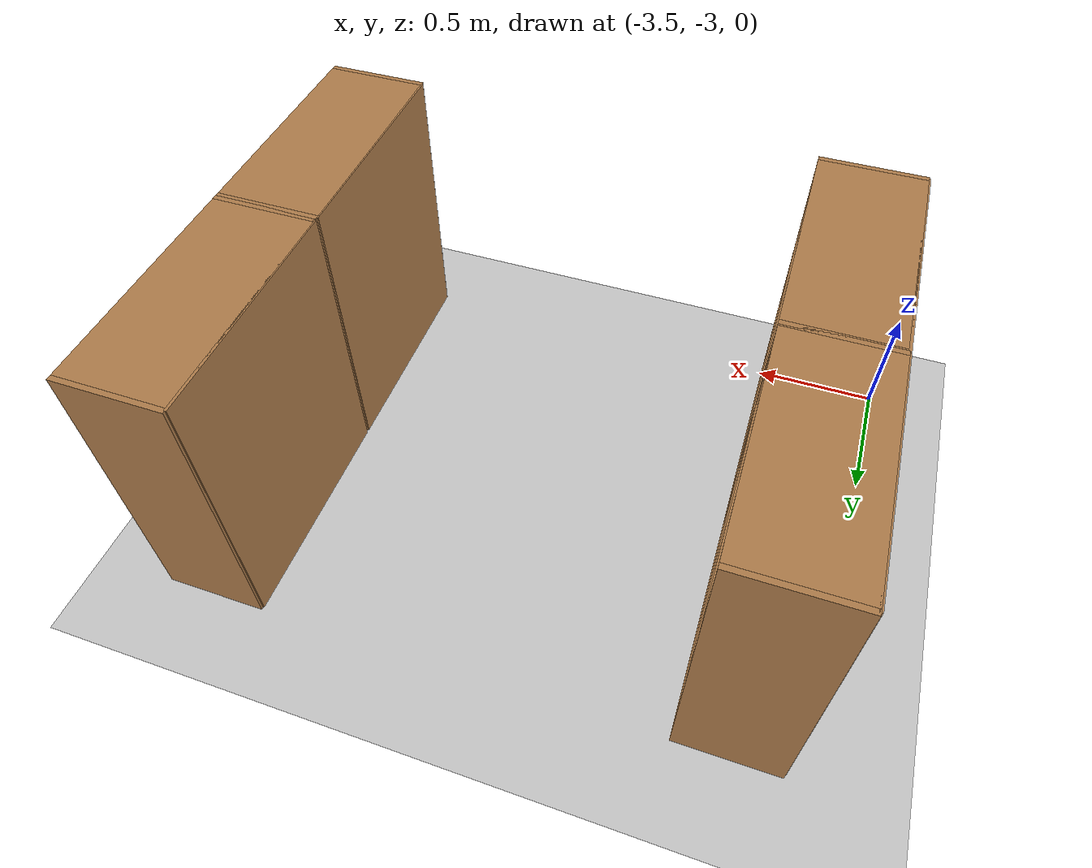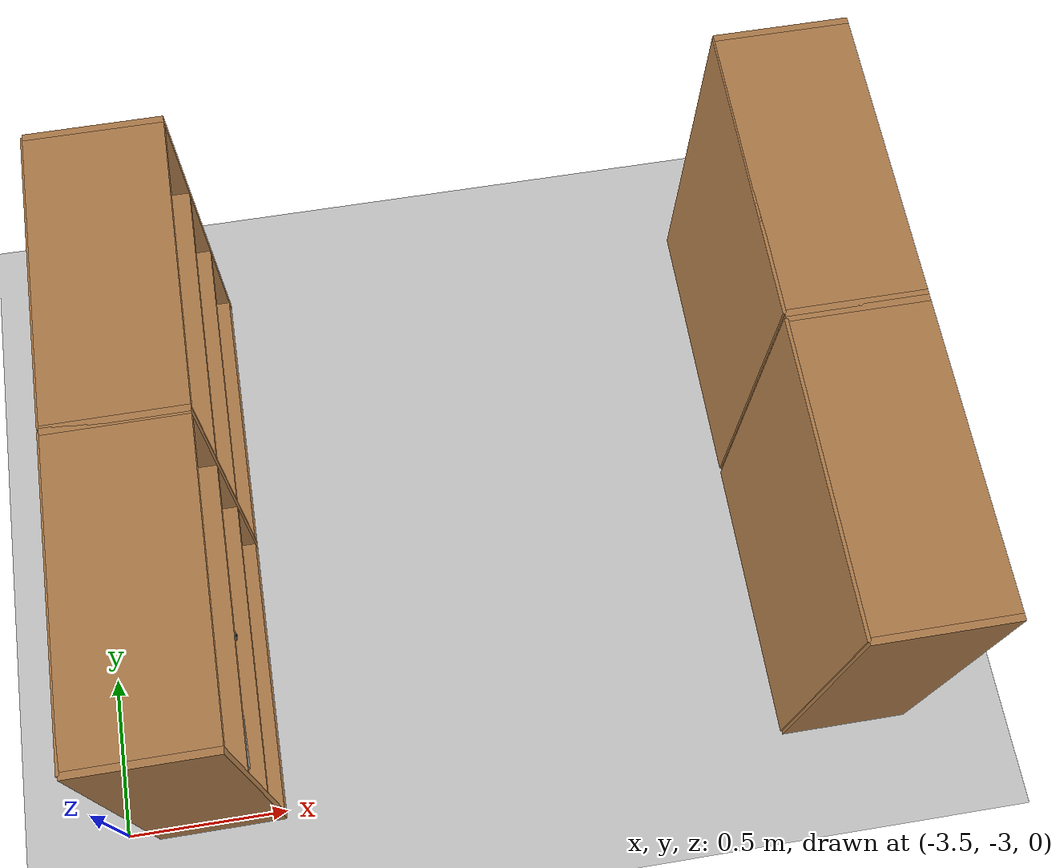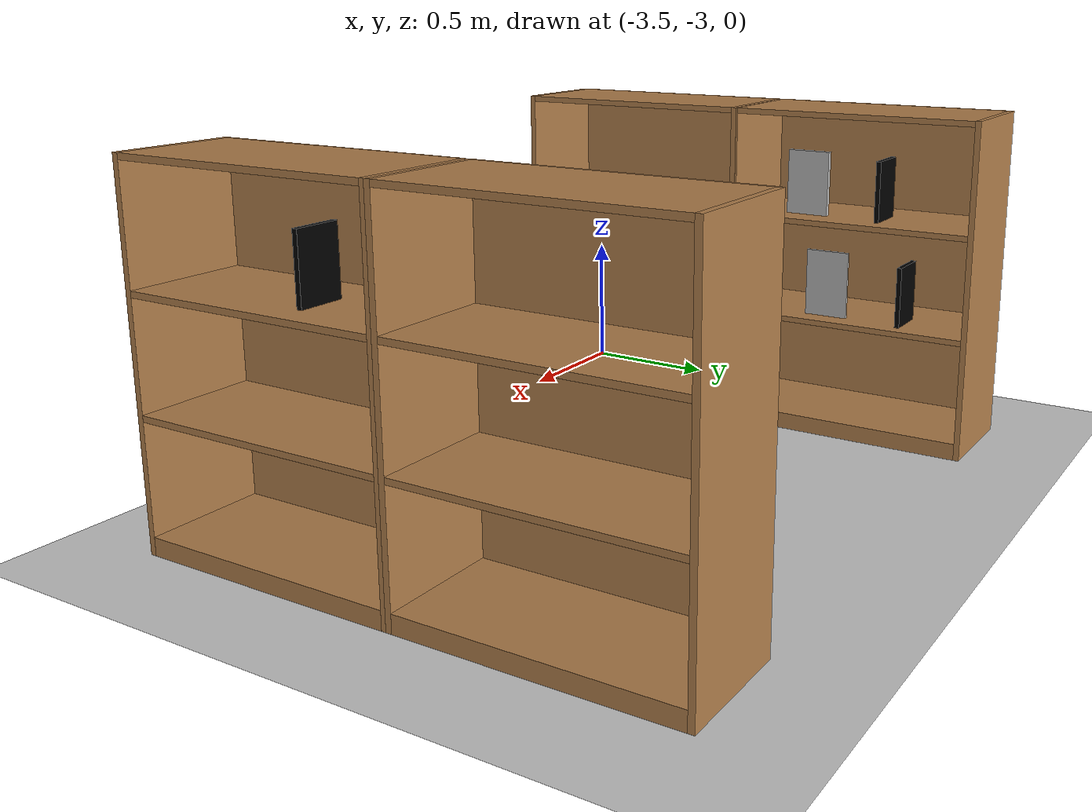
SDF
<sdf version="1.7">
 <world name="default">
  <model name="ground_plane">
   <static>1</static>
   <link name="link">
    <collision name="collision">
     <geometry><plane><normal>0 0 1</normal><size>100 100</size></plane></geometry>
     <surface><friction><ode><mu>100</mu><mu2>50</mu2></ode></friction></surface>
    </collision>
    <visual name="visual">
     <cast_shadows>0</cast_shadows>
     <geometry><plane><normal>0 0 1</normal><size>100 100</size></plane></geometry>
     <material>
      <script><uri>file://media/materials/scripts/gazebo.material</uri><name>Gazebo/Grey</name></script>
     </material>
    </visual>
   </link>
  </model>
  <model name="bookshelf">
   <static>1</static>
   <link name="link">
    <inertial><mass>1</mass></inertial>
    <collision name="back">
     <pose>0 0.005 0.6 0 -0 0</pose>
     <geometry><box><size>0.9 0.01 1.2</size></box></geometry>
    </collision>
    <visual name="visual1">
     <pose>0 0.005 0.6 0 -0 0</pose>
     <geometry><box><size>0.9 0.01 1.2</size></box></geometry>
     <material>
      <script><uri>file://media/materials/scripts/gazebo.material</uri><name>Gazebo/Wood</name></script>
     </material>
    </visual>
    <collision name="left_side">
     <pose>0.45 -0.195 0.6 0 -0 0</pose>
     <geometry><box><size>0.02 0.4 1.2</size></box></geometry>
    </collision>
    <visual name="visual2">
     <pose>0.45 -0.195 0.6 0 -0 0</pose>
     <geometry><box><size>0.02 0.4 1.2</size></box></geometry>
     <material>
      <script><uri>file://media/materials/scripts/gazebo.material</uri><name>Gazebo/Wood</name></script>
     </material>
    </visual>
    <collision name="right_side">
     <pose>-0.45 -0.195 0.6 0 -0 0</pose>
     <geometry><box><size>0.02 0.4 1.2</size></box></geometry>
    </collision>
    <visual name="visual3">
     <pose>-0.45 -0.195 0.6 0 -0 0</pose>
     <geometry><box><size>0.02 0.4 1.2</size></box></geometry>
     <material>
      <script><uri>file://media/materials/scripts/gazebo.material</uri><name>Gazebo/Wood</name></script>
     </material>
    </visual>
    <collision name="bottom">
     <pose>0 -0.195 0.03 0 -0 0</pose>
     <geometry><box><size>0.88 0.4 0.06</size></box></geometry>
    </collision>
    <visual name="visual4">
     <pose>0 -0.195 0.03 0 -0 0</pose>
     <geometry><box><size>0.88 0.4 0.06</size></box></geometry>
     <material>
      <script><uri>file://media/materials/scripts/gazebo.material</uri><name>Gazebo/Wood</name></script>
     </material>
    </visual>
    <collision name="top">
     <pose>0 -0.195 1.19 0 -0 0</pose>
     <geometry><box><size>0.88 0.4 0.02</size></box></geometry>
    </collision>
    <visual name="visual5">
     <pose>0 -0.195 1.19 0 -0 0</pose>
     <geometry><box><size>0.88 0.4 0.02</size></box></geometry>
     <material>
      <script><uri>file://media/materials/scripts/gazebo.material</uri><name>Gazebo/Wood</name></script>
     </material>
    </visual>
    <collision name="low_shelf">
     <pose>0 -0.195 0.43 0 -0 0</pose>
     <geometry><box><size>0.88 0.4 0.02</size></box></geometry>
    </collision>
    <visual name="visual6">
     <pose>0 -0.195 0.43 0 -0 0</pose>
     <geometry><box><size>0.88 0.4 0.02</size></box></geometry>
     <material>
      <script><uri>file://media/materials/scripts/gazebo.material</uri><name>Gazebo/Wood</name></script>
     </material>
    </visual>
    <collision name="high_shelf">
     <pose>0 -0.195 0.8 0 -0 0</pose>
     <geometry><box><size>0.88 0.4 0.02</size></box></geometry>
    </collision>
    <visual name="visual7">
     <pose>0 -0.195 0.8 0 -0 0</pose>
     <geometry><box><size>0.88 0.4 0.02</size></box></geometry>
     <material>
      <script><uri>file://media/materials/scripts/gazebo.material</uri><name>Gazebo/Wood</name></script>
     </material>
    </visual>
   </link>
   <pose>-3.39927 -2.56354 0 0 -0 1.57111</pose>
  </model>
  <model name="bookshelf_clone">
   <static>1</static>
   <link name="link">
    <inertial><mass>1</mass></inertial>
    <collision name="back">
     <pose>0 0.005 0.6 0 -0 0</pose>
     <geometry><box><size>0.9 0.01 1.2</size></box></geometry>
    </collision>
    <visual name="visual1">
     <pose>0 0.005 0.6 0 -0 0</pose>
     <geometry><box><size>0.9 0.01 1.2</size></box></geometry>
     <material>
      <script><uri>file://media/materials/scripts/gazebo.material</uri><name>Gazebo/Wood</name></script>
     </material>
    </visual>
    <collision name="left_side">
     <pose>0.45 -0.195 0.6 0 -0 0</pose>
     <geometry><box><size>0.02 0.4 1.2</size></box></geometry>
    </collision>
    <visual name="visual2">
     <pose>0.45 -0.195 0.6 0 -0 0</pose>
     <geometry><box><size>0.02 0.4 1.2</size></box></geometry>
     <material>
      <script><uri>file://media/materials/scripts/gazebo.material</uri><name>Gazebo/Wood</name></script>
     </material>
    </visual>
    <collision name="right_side">
     <pose>-0.45 -0.195 0.6 0 -0 0</pose>
     <geometry><box><size>0.02 0.4 1.2</size></box></geometry>
    </collision>
    <visual name="visual3">
     <pose>-0.45 -0.195 0.6 0 -0 0</pose>
     <geometry><box><size>0.02 0.4 1.2</size></box></geometry>
     <material>
      <script><uri>file://media/materials/scripts/gazebo.material</uri><name>Gazebo/Wood</name></script>
     </material>
    </visual>
    <collision name="bottom">
     <pose>0 -0.195 0.03 0 -0 0</pose>
     <geometry><box><size>0.88 0.4 0.06</size></box></geometry>
    </collision>
    <visual name="visual4">
     <pose>0 -0.195 0.03 0 -0 0</pose>
     <geometry><box><size>0.88 0.4 0.06</size></box></geometry>
     <material>
      <script><uri>file://media/materials/scripts/gazebo.material</uri><name>Gazebo/Wood</name></script>
     </material>
    </visual>
    <collision name="top">
     <pose>0 -0.195 1.19 0 -0 0</pose>
     <geometry><box><size>0.88 0.4 0.02</size></box></geometry>
    </collision>
    <visual name="visual5">
     <pose>0 -0.195 1.19 0 -0 0</pose>
     <geometry><box><size>0.88 0.4 0.02</size></box></geometry>
     <material>
      <script><uri>file://media/materials/scripts/gazebo.material</uri><name>Gazebo/Wood</name></script>
     </material>
    </visual>
    <collision name="low_shelf">
     <pose>0 -0.195 0.43 0 -0 0</pose>
     <geometry><box><size>0.88 0.4 0.02</size></box></geometry>
    </collision>
    <visual name="visual6">
     <pose>0 -0.195 0.43 0 -0 0</pose>
     <geometry><box><size>0.88 0.4 0.02</size></box></geometry>
     <material>
      <script><uri>file://media/materials/scripts/gazebo.material</uri><name>Gazebo/Wood</name></script>
     </material>
    </visual>
    <collision name="high_shelf">
     <pose>0 -0.195 0.8 0 -0 0</pose>
     <geometry><box><size>0.88 0.4 0.02</size></box></geometry>
    </collision>
    <visual name="visual7">
     <pose>0 -0.195 0.8 0 -0 0</pose>
     <geometry><box><size>0.88 0.4 0.02</size></box></geometry>
     <material>
      <script><uri>file://media/materials/scripts/gazebo.material</uri><name>Gazebo/Wood</name></script>
     </material>
    </visual>
   </link>
   <pose>-3.39982 -1.65685 0 0 -0 1.57111</pose>
  </model>
  <model name="bookshelf_clone_2">
   <static>1</static>
   <link name="link">
    <inertial><mass>1</mass></inertial>
    <collision name="back">
     <pose>0 0.005 0.6 0 -0 0</pose>
     <geometry><box><size>0.9 0.01 1.2</size></box></geometry>
    </collision>
    <visual name="visual1">
     <pose>0 0.005 0.6 0 -0 0</pose>
     <geometry><box><size>0.9 0.01 1.2</size></box></geometry>
     <material>
      <script><uri>file://media/materials/scripts/gazebo.material</uri><name>Gazebo/Wood</name></script>
     </material>
    </visual>
    <collision name="left_side">
     <pose>0.45 -0.195 0.6 0 -0 0</pose>
     <geometry><box><size>0.02 0.4 1.2</size></box></geometry>
    </collision>
    <visual name="visual2">
     <pose>0.45 -0.195 0.6 0 -0 0</pose>
     <geometry><box><size>0.02 0.4 1.2</size></box></geometry>
     <material>
      <script><uri>file://media/materials/scripts/gazebo.material</uri><name>Gazebo/Wood</name></script>
     </material>
    </visual>
    <collision name="right_side">
     <pose>-0.45 -0.195 0.6 0 -0 0</pose>
     <geometry><box><size>0.02 0.4 1.2</size></box></geometry>
    </collision>
    <visual name="visual3">
     <pose>-0.45 -0.195 0.6 0 -0 0</pose>
     <geometry><box><size>0.02 0.4 1.2</size></box></geometry>
     <material>
      <script><uri>file://media/materials/scripts/gazebo.material</uri><name>Gazebo/Wood</name></script>
     </material>
    </visual>
    <collision name="bottom">
     <pose>0 -0.195 0.03 0 -0 0</pose>
     <geometry><box><size>0.88 0.4 0.06</size></box></geometry>
    </collision>
    <visual name="visual4">
     <pose>0 -0.195 0.03 0 -0 0</pose>
     <geometry><box><size>0.88 0.4 0.06</size></box></geometry>
     <material>
      <script><uri>file://media/materials/scripts/gazebo.material</uri><name>Gazebo/Wood</name></script>
     </material>
    </visual>
    <collision name="top">
     <pose>0 -0.195 1.19 0 -0 0</pose>
     <geometry><box><size>0.88 0.4 0.02</size></box></geometry>
    </collision>
    <visual name="visual5">
     <pose>0 -0.195 1.19 0 -0 0</pose>
     <geometry><box><size>0.88 0.4 0.02</size></box></geometry>
     <material>
      <script><uri>file://media/materials/scripts/gazebo.material</uri><name>Gazebo/Wood</name></script>
     </material>
    </visual>
    <collision name="low_shelf">
     <pose>0 -0.195 0.43 0 -0 0</pose>
     <geometry><box><size>0.88 0.4 0.02</size></box></geometry>
    </collision>
    <visual name="visual6">
     <pose>0 -0.195 0.43 0 -0 0</pose>
     <geometry><box><size>0.88 0.4 0.02</size></box></geometry>
     <material>
      <script><uri>file://media/materials/scripts/gazebo.material</uri><name>Gazebo/Wood</name></script>
     </material>
    </visual>
    <collision name="high_shelf">
     <pose>0 -0.195 0.8 0 -0 0</pose>
     <geometry><box><size>0.88 0.4 0.02</size></box></geometry>
    </collision>
    <visual name="visual7">
     <pose>0 -0.195 0.8 0 -0 0</pose>
     <geometry><box><size>0.88 0.4 0.02</size></box></geometry>
     <material>
      <script><uri>file://media/materials/scripts/gazebo.material</uri><name>Gazebo/Wood</name></script>
     </material>
    </visual>
   </link>
   <pose>-1.39561 -2.55264 0 0 -0 1.57111</pose>
  </model>
  <model name="bookshelf_clone_3">
   <static>1</static>
   <link name="link">
    <inertial><mass>1</mass></inertial>
    <collision name="back">
     <pose>0 0.005 0.6 0 -0 0</pose>
     <geometry><box><size>0.9 0.01 1.2</size></box></geometry>
    </collision>
    <visual name="visual1">
     <pose>0 0.005 0.6 0 -0 0</pose>
     <geometry><box><size>0.9 0.01 1.2</size></box></geometry>
     <material>
      <script><uri>file://media/materials/scripts/gazebo.material</uri><name>Gazebo/Wood</name></script>
     </material>
    </visual>
    <collision name="left_side">
     <pose>0.45 -0.195 0.6 0 -0 0</pose>
     <geometry><box><size>0.02 0.4 1.2</size></box></geometry>
    </collision>
    <visual name="visual2">
     <pose>0.45 -0.195 0.6 0 -0 0</pose>
     <geometry><box><size>0.02 0.4 1.2</size></box></geometry>
     <material>
      <script><uri>file://media/materials/scripts/gazebo.material</uri><name>Gazebo/Wood</name></script>
     </material>
    </visual>
    <collision name="right_side">
     <pose>-0.45 -0.195 0.6 0 -0 0</pose>
     <geometry><box><size>0.02 0.4 1.2</size></box></geometry>
    </collision>
    <visual name="visual3">
     <pose>-0.45 -0.195 0.6 0 -0 0</pose>
     <geometry><box><size>0.02 0.4 1.2</size></box></geometry>
     <material>
      <script><uri>file://media/materials/scripts/gazebo.material</uri><name>Gazebo/Wood</name></script>
     </material>
    </visual>
    <collision name="bottom">
     <pose>0 -0.195 0.03 0 -0 0</pose>
     <geometry><box><size>0.88 0.4 0.06</size></box></geometry>
    </collision>
    <visual name="visual4">
     <pose>0 -0.195 0.03 0 -0 0</pose>
     <geometry><box><size>0.88 0.4 0.06</size></box></geometry>
     <material>
      <script><uri>file://media/materials/scripts/gazebo.material</uri><name>Gazebo/Wood</name></script>
     </material>
    </visual>
    <collision name="top">
     <pose>0 -0.195 1.19 0 -0 0</pose>
     <geometry><box><size>0.88 0.4 0.02</size></box></geometry>
    </collision>
    <visual name="visual5">
     <pose>0 -0.195 1.19 0 -0 0</pose>
     <geometry><box><size>0.88 0.4 0.02</size></box></geometry>
     <material>
      <script><uri>file://media/materials/scripts/gazebo.material</uri><name>Gazebo/Wood</name></script>
     </material>
    </visual>
    <collision name="low_shelf">
     <pose>0 -0.195 0.43 0 -0 0</pose>
     <geometry><box><size>0.88 0.4 0.02</size></box></geometry>
    </collision>
    <visual name="visual6">
     <pose>0 -0.195 0.43 0 -0 0</pose>
     <geometry><box><size>0.88 0.4 0.02</size></box></geometry>
     <material>
      <script><uri>file://media/materials/scripts/gazebo.material</uri><name>Gazebo/Wood</name></script>
     </material>
    </visual>
    <collision name="high_shelf">
     <pose>0 -0.195 0.8 0 -0 0</pose>
     <geometry><box><size>0.88 0.4 0.02</size></box></geometry>
    </collision>
    <visual name="visual7">
     <pose>0 -0.195 0.8 0 -0 0</pose>
     <geometry><box><size>0.88 0.4 0.02</size></box></geometry>
     <material>
      <script><uri>file://media/materials/scripts/gazebo.material</uri><name>Gazebo/Wood</name></script>
     </material>
    </visual>
   </link>
   <pose>-1.39572 -1.63764 0 0 -0 1.57111</pose>
  </model>
  <model name="book_6">
   <link name="cover">
    <pose>0 -0.000108 0.01 0 -0 0</pose>
    <visual name="visual">
     <geometry><box><size>0.245 0.16 0.02</size></box></geometry>
     <material>
      <script>
       <uri>file:///home/bruno/Downloads/lib_world_models/book_6/materials/scripts</uri>
       <uri>file:///home/bruno/Downloads/lib_world_models/book_6/materials/textures</uri>
       <name>book_6</name>
      </script>
     </material>
    </visual>
    <collision name="collision"><geometry><box><size>0.245 0.16 0.02</size></box></geometry></collision>
   </link>
   <link name="page">
    <pose>0 0.000608 0.01 0 -0 0</pose>
    <visual name="visual">
     <geometry><box><size>0.24502 0.15862 0.018</size></box></geometry>
     <material>
      <lighting>1</lighting>
      <ambient>1 1 1 1</ambient>
      <diffuse>1 1 1 1</diffuse>
      <specular>0.01 0.01 0.01 1</specular>
      <emissive>0 0 0 1</emissive>
      <shader type="vertex"><normal_map>__default__</normal_map></shader>
     </material>
    </visual>
    <collision name="collision"><geometry><box><size>0.245 0.16 0.018</size></box></geometry></collision>
   </link>
   <static>1</static>
   <pose>-3.13612 -1.85744 0.922198 -0.161354 -1.55165 -3.01514</pose>
  </model>
  <model name="book_7">
   <link name="cover">
    <pose>0 -0.000108 0.005 0 -0 0</pose>
    <visual name="visual">
     <geometry><box><size>0.245 0.16 0.01</size></box></geometry>
     <material>
      <script>
       <uri>file:///home/bruno/Downloads/lib_world_models/book_7/materials/scripts</uri>
       <uri>file:///home/bruno/Downloads/lib_world_models/book_7/materials/textures</uri>
       <name>book_7</name>
      </script>
     </material>
    </visual>
    <collision name="collision"><geometry><box><size>0.245 0.16 0.01</size></box></geometry></collision>
   </link>
   <link name="page">
    <pose>0 0.000608 0.005 0 -0 0</pose>
    <visual name="visual">
     <geometry><box><size>0.24502 0.15862 0.008</size></box></geometry>
     <material>
      <lighting>1</lighting>
      <ambient>1 1 1 1</ambient>
      <diffuse>1 1 1 1</diffuse>
      <specular>0.01 0.01 0.01 1</specular>
      <emissive>0 0 0 1</emissive>
      <shader type="vertex"><normal_map>__default__</normal_map></shader>
     </material>
    </visual>
    <collision name="collision"><geometry><box><size>0.245 0.16 0.008</size></box></geometry></collision>
   </link>
   <static>1</static>
   <pose>-3.08488 -1.75131 0.56514 -3.14159 -1.57013 -0.000548</pose>
  </model>
  <model name="custom_book">
   <link name="cover">
    <pose>0 -0.000108 0.005 0 -0 0</pose>
    <visual name="visual">
     <geometry><box><size>0.245 0.16 0.01</size></box></geometry>
     <material>
      <script>
       <uri>file:///home/bruno/Downloads/lib_world_models/custom_book/materials/scripts</uri>
       <uri>file:///home/bruno/Downloads/lib_world_models/custom_book/materials/textures</uri>
       <name>custom_book</name>
      </script>
     </material>
    </visual>
    <collision name="collision"><geometry><box><size>0.245 0.16 0.01</size></box></geometry></collision>
   </link>
   <link name="page">
    <pose>0 0.000608 0.005 0 -0 0</pose>
    <visual name="visual">
     <geometry><box><size>0.24502 0.15862 0.008</size></box></geometry>
     <material>
      <lighting>1</lighting>
      <ambient>1 1 1 1</ambient>
      <diffuse>1 1 1 1</diffuse>
      <specular>0.01 0.01 0.01 1</specular>
      <emissive>0 0 0 1</emissive>
      <shader type="vertex"><normal_map>__default__</normal_map></shader>
     </material>
    </visual>
    <collision name="collision"><geometry><box><size>0.245 0.16 0.008</size></box></geometry></collision>
   </link>
   <static>1</static>
   <pose>-3.05769 -2.85181 0.563925 0 -1.56692 -3.11539</pose>
  </model>
  <model name="retry_6_clone">
   <link name="link">
    <inertial>
     <mass>0.1</mass>
     <inertia>
      <ixx>0.00037145</ixx>
      <ixy>0</ixy>
      <ixz>0</ixz>
      <iyy>0.00019446</iyy>
      <iyz>0</iyz>
      <izz>0.00056106</izz>
     </inertia>
    </inertial>
    <visual name="visual">
     <geometry><box><size>0.151804 0.220309 0.017052</size></box></geometry>
     <material>
      <shader type="pixel"><normal_map>__default__</normal_map></shader>
      <script><name>ModelPreview_7::link::visual_MATERIAL_</name><uri>__default__</uri></script>
      <ambient>0 0 0 1</ambient>
      <diffuse>0 0 0 1</diffuse>
      <specular>0 0 0 1</specular>
      <emissive>0 0 0 1</emissive>
     </material>
    </visual>
    <collision name="collision">
     <geometry><box><size>0.151804 0.220309 0.017052</size></box></geometry>
     <surface>
      <friction>
       <ode><mu>3.5</mu><mu2>3.5</mu2><fdir1>0 0 0</fdir1><slip1>-0</slip1><slip2>-0</slip2></ode>
       <torsional>
        <coefficient>1</coefficient>
        <patch_radius>0</patch_radius>
        <surface_radius>0</surface_radius>
        <use_patch_radius>1</use_patch_radius>
        <ode><slip>0</slip></ode>
       </torsional>
      </friction>
      <bounce><restitution_coefficient>0</restitution_coefficient><threshold>1e+06</threshold></bounce>
      <contact>
       <collide_without_contact>0</collide_without_contact>
       <collide_without_contact_bitmask>1</collide_without_contact_bitmask>
       <collide_bitmask>1</collide_bitmask>
       <ode>
        <soft_cfm>0</soft_cfm>
        <soft_erp>0.2</soft_erp>
        <kp>1e+13</kp>
        <kd>1</kd>
        <max_vel>0.01</max_vel>
        <min_depth>0</min_depth>
       </ode>
       <bullet>
        <split_impulse>1</split_impulse>
        <split_impulse_penetration_threshold>-0.01</split_impulse_penetration_threshold>
        <soft_cfm>0</soft_cfm>
        <soft_erp>0.2</soft_erp>
        <kp>1e+13</kp>
        <kd>1</kd>
       </bullet>
      </contact>
     </surface>
    </collision>
   </link>
   <static>0</static>
   <pose>-3.15545 -1.57298 0.920155 -1.57079 -1.1e-05 0.000107</pose>
  </model>
  <model name="retry_6_clone_0">
   <link name="link">
    <inertial>
     <mass>0.1</mass>
     <inertia>
      <ixx>0.00037145</ixx>
      <ixy>0</ixy>
      <ixz>0</ixz>
      <iyy>0.00019446</iyy>
      <iyz>0</iyz>
      <izz>0.00056106</izz>
     </inertia>
    </inertial>
    <visual name="visual">
     <geometry><box><size>0.151804 0.220309 0.017052</size></box></geometry>
     <material>
      <shader type="pixel"><normal_map>__default__</normal_map></shader>
      <script><name>ModelPreview_7::link::visual_MATERIAL_</name><uri>__default__</uri></script>
      <ambient>0 0 0 1</ambient>
      <diffuse>0 0 0 1</diffuse>
      <specular>0 0 0 1</specular>
      <emissive>0 0 0 1</emissive>
     </material>
    </visual>
    <collision name="collision">
     <geometry><box><size>0.151804 0.220309 0.017052</size></box></geometry>
     <surface>
      <friction>
       <ode><mu>3.5</mu><mu2>3.5</mu2><fdir1>0 0 0</fdir1><slip1>-0</slip1><slip2>-0</slip2></ode>
       <torsional>
        <coefficient>1</coefficient>
        <patch_radius>0</patch_radius>
        <surface_radius>0</surface_radius>
        <use_patch_radius>1</use_patch_radius>
        <ode><slip>0</slip></ode>
       </torsional>
      </friction>
      <bounce><restitution_coefficient>0</restitution_coefficient><threshold>1e+06</threshold></bounce>
      <contact>
       <collide_without_contact>0</collide_without_contact>
       <collide_without_contact_bitmask>1</collide_without_contact_bitmask>
       <collide_bitmask>1</collide_bitmask>
       <ode>
        <soft_cfm>0</soft_cfm>
        <soft_erp>0.2</soft_erp>
        <kp>1e+13</kp>
        <kd>1</kd>
        <max_vel>0.01</max_vel>
        <min_depth>0</min_depth>
       </ode>
       <bullet>
        <split_impulse>1</split_impulse>
        <split_impulse_penetration_threshold>-0.01</split_impulse_penetration_threshold>
        <soft_cfm>0</soft_cfm>
        <soft_erp>0.2</soft_erp>
        <kp>1e+13</kp>
        <kd>1</kd>
       </bullet>
      </contact>
     </surface>
    </collision>
   </link>
   <static>0</static>
   <pose>-1.16471 -2.42789 0.920155 -1.57079 -1.1e-05 0.000107</pose>
  </model>
  <model name="retry_6_clone_5">
   <link name="link">
    <inertial>
     <mass>0.1</mass>
     <inertia>
      <ixx>0.00037145</ixx>
      <ixy>0</ixy>
      <ixz>0</ixz>
      <iyy>0.00019446</iyy>
      <iyz>0</iyz>
      <izz>0.00056106</izz>
     </inertia>
    </inertial>
    <visual name="visual">
     <geometry><box><size>0.151804 0.220309 0.017052</size></box></geometry>
     <material>
      <shader type="pixel"><normal_map>__default__</normal_map></shader>
      <script><name>ModelPreview_7::link::visual_MATERIAL_</name><uri>__default__</uri></script>
      <ambient>0 0 0 1</ambient>
      <diffuse>0 0 0 1</diffuse>
      <specular>0 0 0 1</specular>
      <emissive>0 0 0 1</emissive>
     </material>
    </visual>
    <collision name="collision">
     <geometry><box><size>0.151804 0.220309 0.017052</size></box></geometry>
     <surface>
      <friction>
       <ode><mu>3.5</mu><mu2>3.5</mu2><fdir1>0 0 0</fdir1><slip1>-0</slip1><slip2>-0</slip2></ode>
       <torsional>
        <coefficient>1</coefficient>
        <patch_radius>0</patch_radius>
        <surface_radius>0</surface_radius>
        <use_patch_radius>1</use_patch_radius>
        <ode><slip>0</slip></ode>
       </torsional>
      </friction>
      <bounce><restitution_coefficient>0</restitution_coefficient><threshold>1e+06</threshold></bounce>
      <contact>
       <collide_without_contact>0</collide_without_contact>
       <collide_without_contact_bitmask>1</collide_without_contact_bitmask>
       <collide_bitmask>1</collide_bitmask>
       <ode>
        <soft_cfm>0</soft_cfm>
        <soft_erp>0.2</soft_erp>
        <kp>1e+13</kp>
        <kd>1</kd>
        <max_vel>0.01</max_vel>
        <min_depth>0</min_depth>
       </ode>
       <bullet>
        <split_impulse>1</split_impulse>
        <split_impulse_penetration_threshold>-0.01</split_impulse_penetration_threshold>
        <soft_cfm>0</soft_cfm>
        <soft_erp>0.2</soft_erp>
        <kp>1e+13</kp>
        <kd>1</kd>
       </bullet>
      </contact>
     </surface>
    </collision>
   </link>
   <static>0</static>
   <pose>-3.12029 -2.53566 0.550154 -1.5708 1.1e-05 9.6e-05</pose>
  </model>
  <model name="retry_6_clone_5_clone">
   <link name="link">
    <inertial>
     <mass>0.1</mass>
     <inertia>
      <ixx>0.00037145</ixx>
      <ixy>0</ixy>
      <ixz>0</ixz>
      <iyy>0.00019446</iyy>
      <iyz>0</iyz>
      <izz>0.00056106</izz>
     </inertia>
    </inertial>
    <visual name="visual">
     <geometry><box><size>0.151804 0.220309 0.017052</size></box></geometry>
     <material>
      <shader type="pixel"><normal_map>__default__</normal_map></shader>
      <script><name>ModelPreview_7::link::visual_MATERIAL_</name><uri>__default__</uri></script>
      <ambient>0 0 0 1</ambient>
      <diffuse>0 0 0 1</diffuse>
      <specular>0 0 0 1</specular>
      <emissive>0 0 0 1</emissive>
     </material>
    </visual>
    <collision name="collision">
     <geometry><box><size>0.151804 0.220309 0.017052</size></box></geometry>
     <surface>
      <friction>
       <ode><mu>3.5</mu><mu2>3.5</mu2><fdir1>0 0 0</fdir1><slip1>-0</slip1><slip2>-0</slip2></ode>
       <torsional>
        <coefficient>1</coefficient>
        <patch_radius>0</patch_radius>
        <surface_radius>0</surface_radius>
        <use_patch_radius>1</use_patch_radius>
        <ode><slip>0</slip></ode>
       </torsional>
      </friction>
      <bounce><restitution_coefficient>0</restitution_coefficient><threshold>1e+06</threshold></bounce>
      <contact>
       <collide_without_contact>0</collide_without_contact>
       <collide_without_contact_bitmask>1</collide_without_contact_bitmask>
       <collide_bitmask>1</collide_bitmask>
       <ode>
        <soft_cfm>0</soft_cfm>
        <soft_erp>0.2</soft_erp>
        <kp>1e+13</kp>
        <kd>1</kd>
        <max_vel>0.01</max_vel>
        <min_depth>0</min_depth>
       </ode>
       <bullet>
        <split_impulse>1</split_impulse>
        <split_impulse_penetration_threshold>-0.01</split_impulse_penetration_threshold>
        <soft_cfm>0</soft_cfm>
        <soft_erp>0.2</soft_erp>
        <kp>1e+13</kp>
        <kd>1</kd>
       </bullet>
      </contact>
     </surface>
    </collision>
   </link>
   <static>0</static>
   <pose>-3.1314 -1.46799 0.550154 -1.5708 1.1e-05 9.6e-05</pose>
  </model>
 </world>
</sdf>
